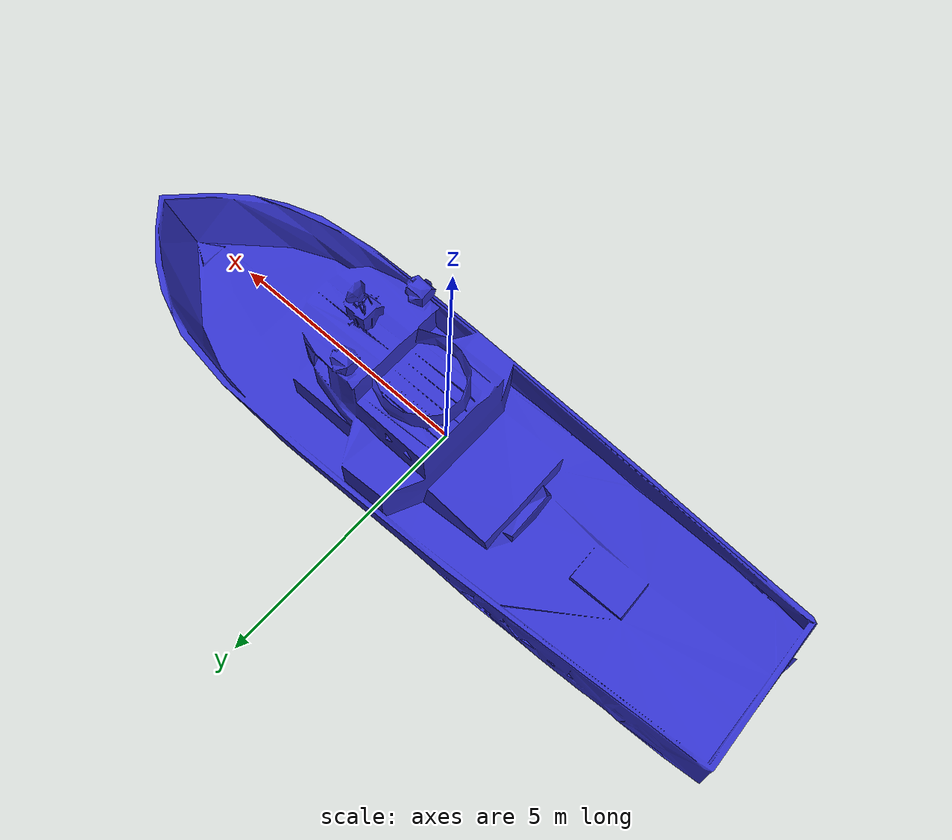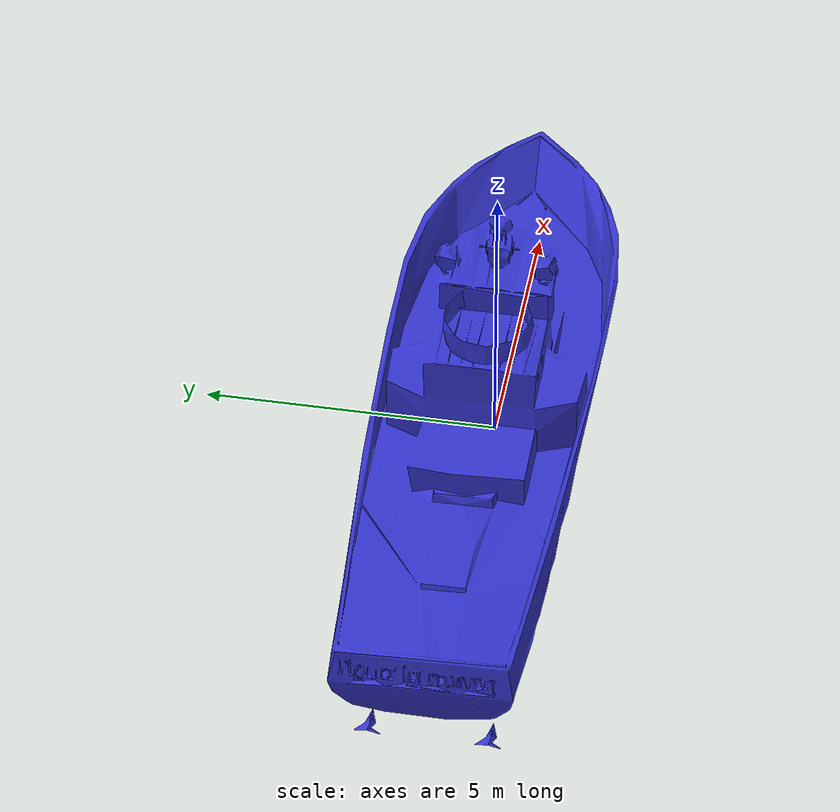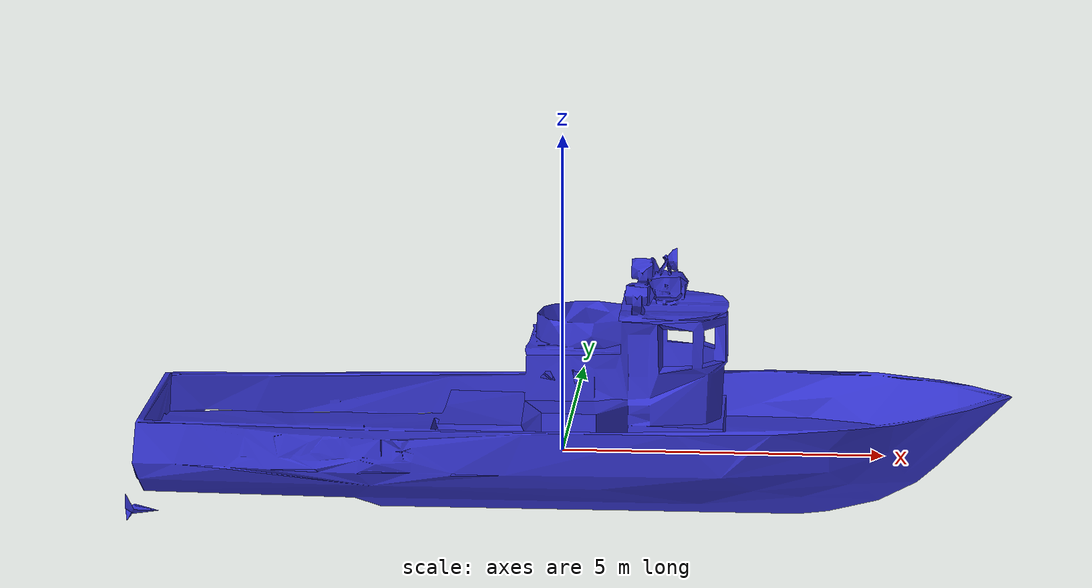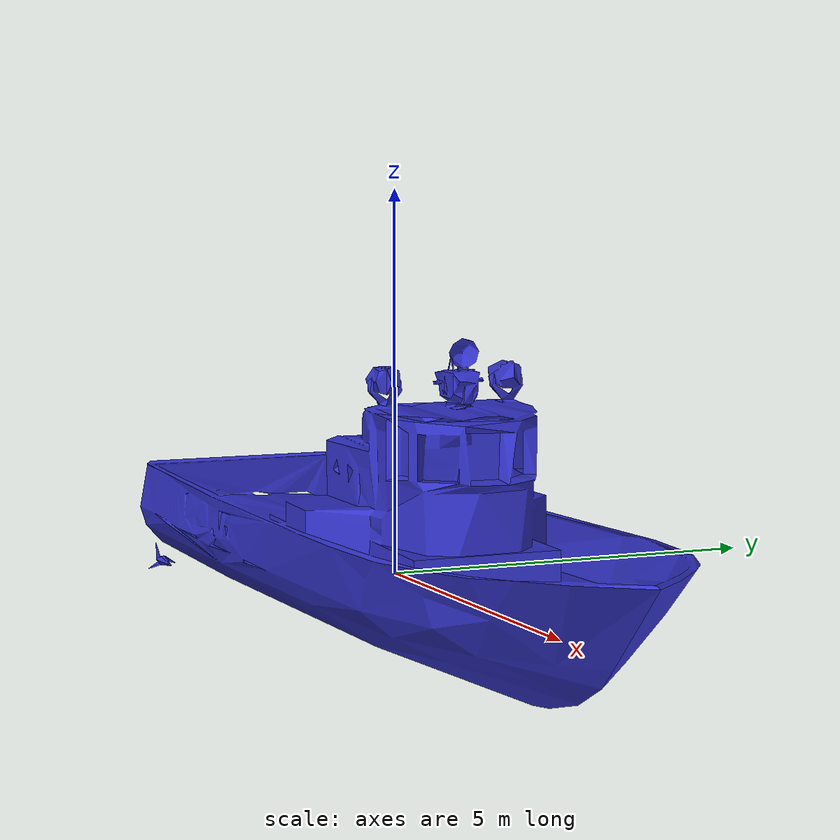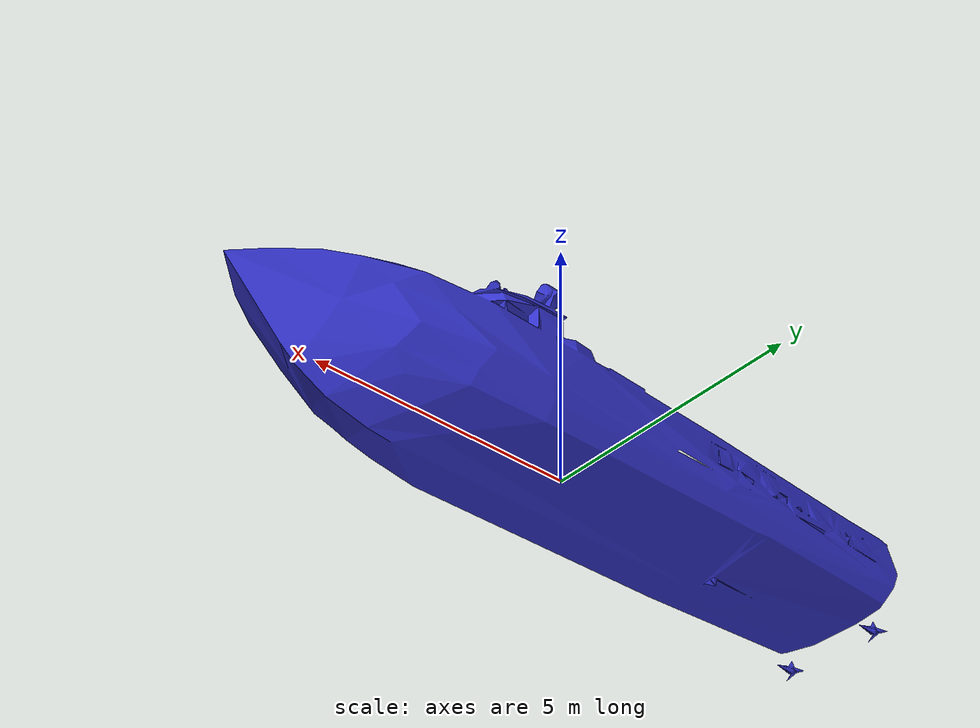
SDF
<?xml version="1.0" ?>
<sdf version="1.9">
  <model name="vessel_v2">
    <link name="base_link">
      <inertial>
        <mass>55000.0</mass>
        <pose>0 0 -0.98 0 0 0</pose>
        <inertia>
          <ixx>146366.0</ixx>
          <iyy>805620.0</iyy>
          <izz>913838.0</izz>
          <ixy>0.0000001</ixy> <ixz>0.0000001</ixz> <iyz>0.0000001</iyz>
        </inertia>
      </inertial>

      <collision name="collision_hull">
        <pose>0 0 0.0 0 0 0</pose>
        <geometry>
          <box><size>13.11 5.27 2.04</size></box>
        </geometry>
      </collision>

      <visual name="visual_hull">
        <pose>-2.5 0 0.78 0 0 0</pose>
        <geometry>
          <mesh>
          <uri>vessel_v2/meshes/vessel_simplified.stl</uri>
          <scale>0.0556 0.0556 0.0556</scale>
          </mesh>
        </geometry>
        <material>
          <ambient>0.2 0.2 0.8 1.0</ambient>
          <diffuse>0.2 0.2 0.8 1.0</diffuse>
        </material>
      </visual>
    </link>

    <link name="left_propeller">
      <pose>-6.6 -1.0 -0.8 0 0 0</pose>
      <inertial>
        <mass>0.5</mass>
        <inertia>
          <ixx>0.001</ixx><iyy>0.001</iyy><izz>0.001</izz>
          <ixy>0.000000001</ixy><ixz>0.0000000001</ixz><iyz>0.0000000001</iyz>
        </inertia>
      </inertial>

      <visual name="left_prop_visual">
        <pose>0.0 0.0 0.0 0 0 3.14</pose>
        <geometry>
          <mesh>
            <uri>vessel_v2/meshes/vessel_propeller_simplified.stl</uri>
            <scale>0.1 0.1 0.1</scale>
          </mesh>
        </geometry>
        <material>
          <ambient>0.2 0.2 0.8 1.0</ambient>
          <diffuse>0.2 0.2 0.8 1.0</diffuse>
        </material>
      </visual>
    </link>

    <link name="right_propeller">
      <pose>-6.6 1.0 -0.8 0 0 0</pose>
      <inertial>
        <mass>0.5</mass>
        <inertia>
          <ixx>0.001</ixx><iyy>0.001</iyy><izz>0.001</izz>
          <ixy>0.000000001</ixy><ixz>0.0000000001</ixz><iyz>0.0000000001</iyz>
        </inertia>
      </inertial>

      <visual name="right_prop_visual">
        <pose>0.0 0.0 0.0 0 0.0 3.14</pose>
        <geometry>
          <mesh>
            <uri>vessel_v2/meshes/vessel_propeller_simplified.stl</uri>
            <scale>0.1 0.1 0.1</scale>
          </mesh>
        </geometry>
        <material>
          <ambient>0.2 0.2 0.8 1.0</ambient>
          <diffuse>0.2 0.2 0.8 1.0</diffuse>
        </material>
      </visual>
    </link>

    <joint name="left_engine_joint" type="revolute">
      <parent>base_link</parent>
      <child>left_propeller</child>
      <axis>
        <xyz>1 0 0</xyz>

        <limit>
              <lower>-1e16</lower>
              <upper>1e16</upper>
              <effort>1e9</effort>
              <velocity>10000</velocity>
        </limit>

          <dynamics>
              <damping>0.0</damping>
              <friction>0.0</friction>
        </dynamics>

      </axis>
    </joint>

    <joint name="right_engine_joint" type="revolute">
      <parent>base_link</parent>
      <child>right_propeller</child>
      <axis>
        <xyz>1 0 0</xyz>

      <limit>
            <lower>-1e16</lower>
            <upper>1e16</upper>
            <effort>1e9</effort>
            <velocity>10000</velocity>
        </limit>

        <dynamics>
            <damping>0.0</damping>
            <friction>0.0</friction>
        </dynamics>

      </axis>
    </joint>

    <link name="gps_link">
      <pose>-3.0 0 2.5 0 0 0</pose>
       <inertial>
        <mass>0.1</mass>
        <inertia>
          <ixx>0.001</ixx><iyy>0.001</iyy><izz>0.001</izz>
          <ixy>0.000000001</ixy><ixz>0.0000000001</ixz><iyz>0.0000000001</iyz>
        </inertia>
      </inertial>

      <sensor name="gps_sensor" type="navsat">
        <always_on>1</always_on>
        <update_rate>10</update_rate> <topic>/vessel_v2/gps/fix</topic>
      </sensor>
    </link>

    <joint name="gps_joint" type="fixed">
      <parent>base_link</parent>
      <child>gps_link</child>
    </joint>

    <link name="camera_link">
      <pose>6.0 0 1.8 0 0 0</pose>
      <inertial>
        <mass>0.25</mass>
        <inertia>
          <ixx>0.001</ixx><iyy>0.001</iyy><izz>0.001</izz>
          <ixy>0.000000001</ixy><ixz>0.0000000001</ixz><iyz>0.0000000001</iyz>
        </inertia>
      </inertial>

      <sensor name="camera" type="camera">
        <pose>0 0 0.2 0 0 0</pose>
        <always_on>1</always_on>
        <update_rate>30</update_rate>
        <topic>/vessel_v2/camera</topic>
        <camera>
          <horizontal_fov>1.396</horizontal_fov>
          <image>
            <width>800</width>
            <height>600</height>
            <format>R8G8B8</format>
          </image>
          <clip>
            <near>0.1</near>
            <far>150</far>
          </clip>
        </camera>
      </sensor>
    </link>

    <joint name="camera_joint" type="fixed">
      <parent>base_link</parent>
      <child>camera_link</child>
    </joint>

    <link name="lidar_link">
      <pose>6.0 0 1.2 0 0 0</pose>
      <inertial>
        <mass>0.25</mass>
        <inertia>
          <ixx>0.001</ixx><iyy>0.001</iyy><izz>0.001</izz>
          <ixy>0.000000001</ixy><ixz>0.0000000001</ixz><iyz>0.0000000001</iyz>
        </inertia>
      </inertial>

      <sensor name="gpu_lidar" type="gpu_lidar">
        <pose>0 0 0.7 0 0 0</pose>
        <always_on>1</always_on>
        <visualize>true</visualize>
        <update_rate>10</update_rate>
        <topic>/vessel_v2/lidar</topic>
        <lidar>
          <scan>
            <horizontal>
              <samples>640</samples>
              <resolution>1</resolution>
              <min_angle>-1.57</min_angle>
              <max_angle>1.57</max_angle>
            </horizontal>
            <vertical>
              <samples>16</samples>
              <resolution>1</resolution>
              <min_angle>-0.261</min_angle>
              <max_angle>0.261</max_angle>
            </vertical>
          </scan>
          <range>
            <min>0.5</min>
            <max>100.0</max>
            <resolution>0.01</resolution>
          </range>
        </lidar>
      </sensor>
    </link>

    <joint name="lidar_joint" type="fixed">
      <parent>base_link</parent>
      <child>lidar_link</child>
    </joint>

    <link name="sonar_link">
      <pose>8.0 0 -2.5 0 1.57 0</pose>
      <inertial>
        <mass>0.5</mass>
        <inertia>
          <ixx>0.001</ixx><iyy>0.001</iyy><izz>0.001</izz>
          <ixy>0.000000001</ixy><ixz>0.0000000001</ixz><iyz>0.0000000001</iyz>
        </inertia>
      </inertial>
      <sensor name="sonar" type="gpu_lidar">
        <pose>0 0 0 0 0 0</pose>
        <always_on>1</always_on>
        <visualize>true</visualize>
        <update_rate>5</update_rate>
        <topic>/vessel_v2/sonar</topic>
        <lidar>
          <scan>
            <horizontal>
              <samples>32</samples>
              <resolution>1</resolution>
              <min_angle>-0.349</min_angle>
              <max_angle>0.349</max_angle>
            </horizontal>
            <vertical>
              <samples>32</samples>
              <resolution>1</resolution>
              <min_angle>-0.349</min_angle>
              <max_angle>0.349</max_angle>
            </vertical>
          </scan>
          <range>
            <min>0.5</min>
            <max>500.0</max>
            <resolution>0.1</resolution>
          </range>
        </lidar>
      </sensor>
    </link>

    <joint name="sonar_joint" type="fixed">
      <parent>base_link</parent>
      <child>sonar_link</child>
    </joint>

    <plugin filename="gz-sim-hydrodynamics-system" name="gz::sim::systems::Hydrodynamics">
      <!-- forza su su x.y.z -->
      <link_name>base_link</link_name>
      <!-- SURGE (X) -->
      <xU>-2750.0</xU>
      <xUabsU>-1500.0</xUabsU>
      <!-- SWAY (Y) -->
      <yV>-5500.0</yV>
      <yVabsV>-4028.0</yVabsV>
      <!-- HEAVE (Z) -->
      <zW>-5500.0</zW>
      <zWabsW>-15000.0</zWabsW>
      <!-- momento frenante su x.y.z, linear dumping: basse velocità-->
      <!-- ROLL (X) -->
      <kP>-14636.0</kP>
      <kPabsP>-100000.0</kPabsP>

      <!-- PITCH (Y) -->
      <mQ>-80562.0</mQ>
      <mQabsQ>-200000.0</mQabsQ>

      <!-- YAW (Z) -->
      <nR>-60922.0</nR>
      <nRabsR>-283000.0</nRabsR>
      <!-- smorzamento quadratico, damping-drag: alte vleocità -->
    </plugin>

    <plugin filename="gz-sim-odometry-publisher-system" name="gz::sim::systems::OdometryPublisher">
      <odom_frame>odom</odom_frame>
      <robot_base_frame>base_link</robot_base_frame>
      <odom_publish_frequency>50</odom_publish_frequency>
      <dimensions>3</dimensions>
    </plugin>

    <plugin filename="gz-sim-thruster-system" name="gz::sim::systems::Thruster">
      <namespace>vessel_v2</namespace>
      <joint_name>left_engine_joint</joint_name>
      <max_thrust_cmd>30000.0</max_thrust_cmd>
      <min_thrust_cmd>-20000.0</min_thrust_cmd>
      <thrust_coefficient>0.0126</thrust_coefficient>
      <velocity_control>false</velocity_control>
      <fluid_density>1025.0</fluid_density>
      <propeller_diameter>1.2</propeller_diameter>
    </plugin>

    <plugin filename="gz-sim-thruster-system" name="gz::sim::systems::Thruster">
      <namespace>vessel_v2</namespace>
      <joint_name>right_engine_joint</joint_name>
      <max_thrust_cmd>30000.0</max_thrust_cmd>
      <min_thrust_cmd>-20000.0</min_thrust_cmd>
      <velocity_control>false</velocity_control>
      <thrust_coefficient>0.0126</thrust_coefficient>
      <fluid_density>1025.0</fluid_density>
      <propeller_diameter>1.2</propeller_diameter>
    </plugin>

    <plugin filename="gz-sim-joint-state-publisher-system" name="gz::sim::systems::JointStatePublisher"/>

  </model>
</sdf>
